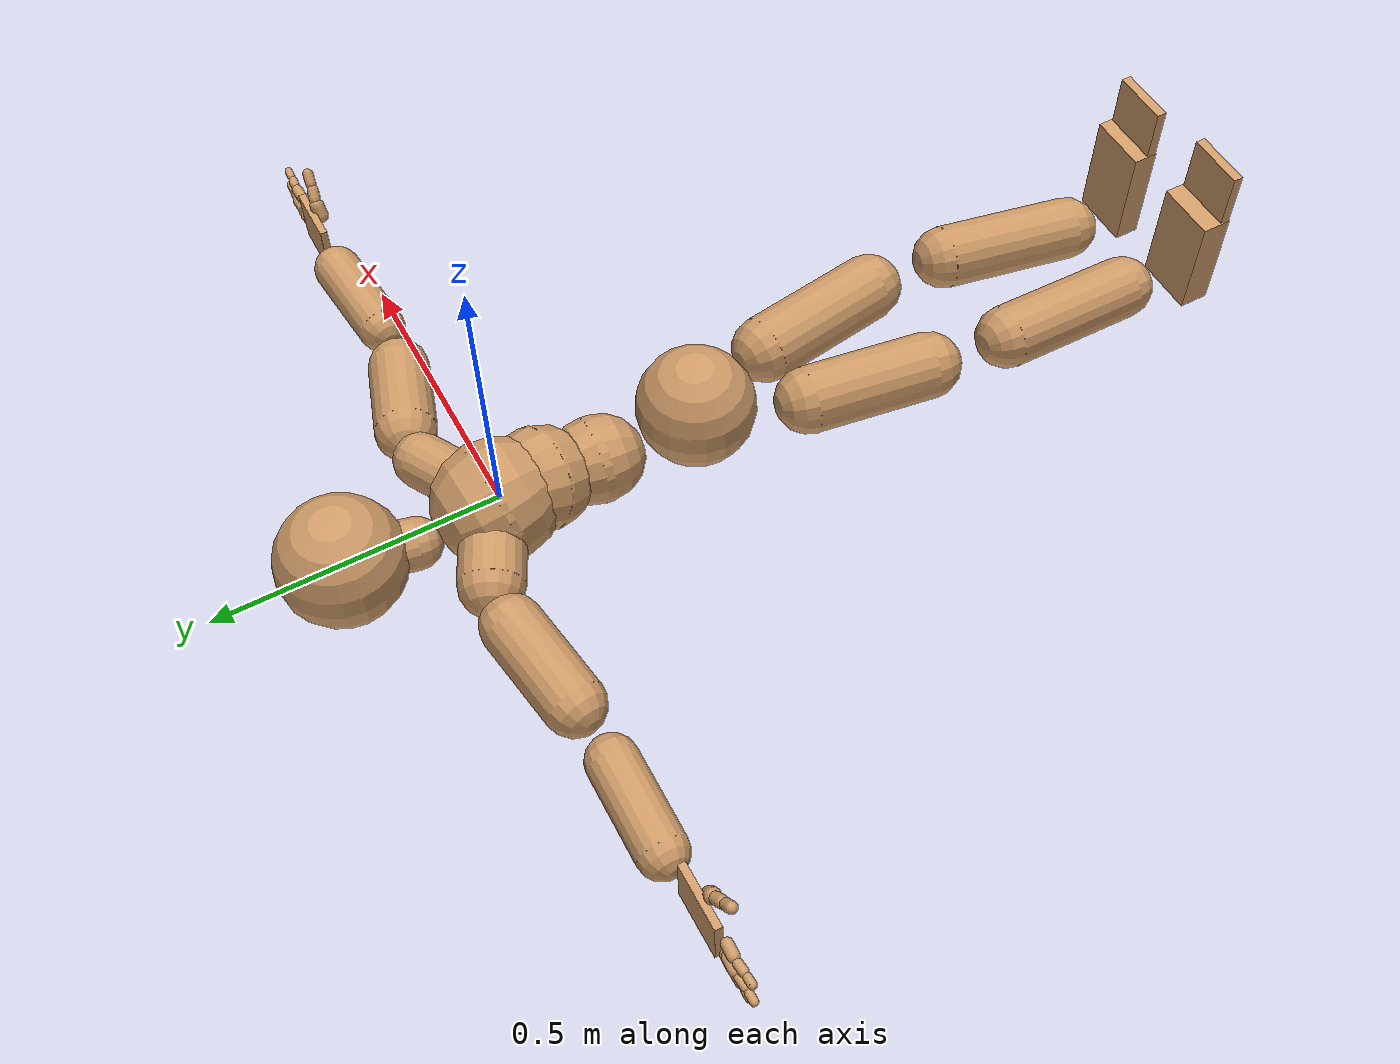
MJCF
<mujoco model="humanoid">
  <compiler coordinate="local" angle="degree"/>
  <default>
    <joint damping="0.0" armature="0.01" stiffness="0.0" limited="true"/>
    <geom conaffinity="1" condim="3" contype="7" margin="0.001" rgba="0.8 0.6 .4 1"/>
  </default>
  <asset>
    <texture type="skybox" builtin="gradient" rgb1=".4 .5 .6" rgb2="0 0 0" width="100" height="100"/>
    <texture builtin="flat" height="1278" mark="cross" markrgb="1 1 1" name="texgeom" random="0.01" rgb1="0.8 0.6 0.4" rgb2="0.8 0.6 0.4" type="cube" width="127"/>
    <texture builtin="checker" height="100" name="texplane" rgb1="0 0 0" rgb2="0.8 0.8 0.8" type="2d" width="100"/>
    <material name="MatPlane" reflectance="0.5" shininess="1" specular="1" texrepeat="60 60" texture="texplane"/>
    <material name="geom" texture="texgeom" texuniform="true"/>
  </asset>
  <worldbody>
    <body name="Pelvis" pos="0.0012 -0.3677 0.017">
      <freejoint name="Pelvis"/>
      <geom type="sphere" contype="1" conaffinity="1" density="4629.6296296296305" size="0.1044" pos="0.0000 0.0000 0.0000" name="Pelvis"/>
      <body name="L_Hip" pos="0.0566 -0.096 -0.0238">
        <joint name="L_Hip_x" type="hinge" pos="0 0 0" axis="1 0 0" stiffness="800" damping="80" armature="0.02" range="-90.0000 90.0000"/>
        <joint name="L_Hip_y" type="hinge" pos="0 0 0" axis="0 1 0" stiffness="800" damping="80" armature="0.02" range="-90.0000 90.0000"/>
        <joint name="L_Hip_z" type="hinge" pos="0 0 0" axis="0 0 1" stiffness="800" damping="80" armature="0.02" range="-90.0000 90.0000"/>
        <geom type="capsule" contype="1" conaffinity="1" density="2040.816327" fromto="0.0129 -0.0783 -0.0013 0.0514 -0.3132 -0.0052" size="0.0598" name="L_Hip"/>
        <body name="L_Knee" pos="0.0643 -0.3915 -0.0065">
          <joint name="L_Knee_x" type="hinge" pos="0 0 0" axis="1 0 0" stiffness="800" damping="80" armature="0.02" range="0.0000 180.0000"/>
          <joint name="L_Knee_y" type="hinge" pos="0 0 0" axis="0 1 0" stiffness="800" damping="80" armature="0.02" range="-5.6250 5.6250"/>
          <joint name="L_Knee_z" type="hinge" pos="0 0 0" axis="0 0 1" stiffness="800" damping="80" armature="0.02" range="-5.6250 5.6250"/>
          <geom type="capsule" contype="1" conaffinity="1" density="1234.567901" fromto="-0.0100 -0.0849 -0.0080 -0.0402 -0.3394 -0.0321" size="0.0567" name="L_Knee"/>
          <body name="L_Ankle" pos="-0.0502 -0.4243 -0.0402">
            <joint name="L_Ankle_x" type="hinge" pos="0 0 0" axis="1 0 0" stiffness="800" damping="80" armature="0.02" range="-90.0000 90.0000"/>
            <joint name="L_Ankle_y" type="hinge" pos="0 0 0" axis="0 1 0" stiffness="800" damping="80" armature="0.02" range="-90.0000 90.0000"/>
            <joint name="L_Ankle_z" type="hinge" pos="0 0 0" axis="0 0 1" stiffness="800" damping="80" armature="0.02" range="-90.0000 90.0000"/>
            <geom type="box" contype="1" conaffinity="1" density="1000.000135" pos="0.0235 -0.0317 0.0705" size="0.0557 0.0226 0.099" quat="1.0000 0.0000 0.0000 0.0000" name="L_Ankle"/>
            <body name="L_Toe" pos="0.0469 -0.0635 0.141">
              <joint name="L_Toe_x" type="hinge" pos="0 0 0" axis="1 0 0" stiffness="500" damping="50" armature="0.02" range="-90.0000 90.0000"/>
              <joint name="L_Toe_y" type="hinge" pos="0 0 0" axis="0 1 0" stiffness="500" damping="50" armature="0.02" range="-45.0000 45.0000"/>
              <joint name="L_Toe_z" type="hinge" pos="0 0 0" axis="0 0 1" stiffness="500" damping="50" armature="0.02" range="-45.0000 45.0000"/>
              <geom type="box" contype="1" conaffinity="1" density="999.999952" pos="-0.0235 0.0183 0.0715" size="0.0535 0.0091 0.0547" quat="1.0000 0.0000 0.0000 0.0000" name="L_Toe"/>
            </body>
          </body>
        </body>
      </body>
      <body name="R_Hip" pos="-0.0582 -0.1069 -0.0175">
        <joint name="R_Hip_x" type="hinge" pos="0 0 0" axis="1 0 0" stiffness="800" damping="80" armature="0.02" range="-90.0000 90.0000"/>
        <joint name="R_Hip_y" type="hinge" pos="0 0 0" axis="0 1 0" stiffness="800" damping="80" armature="0.02" range="-90.0000 90.0000"/>
        <joint name="R_Hip_z" type="hinge" pos="0 0 0" axis="0 0 1" stiffness="800" damping="80" armature="0.02" range="-90.0000 90.0000"/>
        <geom type="capsule" contype="1" conaffinity="1" density="2040.816327" fromto="-0.0094 -0.0749 -0.0028 -0.0378 -0.2995 -0.0111" size="0.0596" name="R_Hip"/>
        <body name="R_Knee" pos="-0.0472 -0.3743 -0.0139">
          <joint name="R_Knee_x" type="hinge" pos="0 0 0" axis="1 0 0" stiffness="800" damping="80" armature="0.02" range="0.0000 180.0000"/>
          <joint name="R_Knee_y" type="hinge" pos="0 0 0" axis="0 1 0" stiffness="800" damping="80" armature="0.02" range="-5.6250 5.6250"/>
          <joint name="R_Knee_z" type="hinge" pos="0 0 0" axis="0 0 1" stiffness="800" damping="80" armature="0.02" range="-5.6250 5.6250"/>
          <geom type="capsule" contype="1" conaffinity="1" density="1234.567901" fromto="0.0040 -0.0876 -0.0077 0.0159 -0.3505 -0.0309" size="0.0563" name="R_Knee"/>
          <body name="R_Ankle" pos="0.0198 -0.4381 -0.0386">
            <joint name="R_Ankle_x" type="hinge" pos="0 0 0" axis="1 0 0" stiffness="800" damping="80" armature="0.02" range="-90.0000 90.0000"/>
            <joint name="R_Ankle_y" type="hinge" pos="0 0 0" axis="0 1 0" stiffness="800" damping="80" armature="0.02" range="-90.0000 90.0000"/>
            <joint name="R_Ankle_z" type="hinge" pos="0 0 0" axis="0 0 1" stiffness="800" damping="80" armature="0.02" range="-90.0000 90.0000"/>
            <geom type="box" contype="1" conaffinity="1" density="999.999951" pos="-0.0184 -0.0311 0.0740" size="0.0557 0.027 0.099" quat="1.0000 0.0000 0.0000 0.0000" name="R_Ankle"/>
            <body name="R_Toe" pos="-0.0368 -0.0621 0.1479">
              <joint name="R_Toe_x" type="hinge" pos="0 0 0" axis="1 0 0" stiffness="500" damping="50" armature="0.02" range="-90.0000 90.0000"/>
              <joint name="R_Toe_y" type="hinge" pos="0 0 0" axis="0 1 0" stiffness="500" damping="50" armature="0.02" range="-45.0000 45.0000"/>
              <joint name="R_Toe_z" type="hinge" pos="0 0 0" axis="0 0 1" stiffness="500" damping="50" armature="0.02" range="-45.0000 45.0000"/>
              <geom type="box" contype="1" conaffinity="1" density="999.999916" pos="0.0184 0.0129 0.0750" size="0.0535 0.0089 0.0547" quat="1.0000 0.0000 0.0000 0.0000" name="R_Toe"/>
            </body>
          </body>
        </body>
      </body>
      <body name="Torso" pos="-0.0021 0.1116 -0.0376">
        <joint name="Torso_x" type="hinge" pos="0 0 0" axis="1 0 0" stiffness="1000" damping="100" armature="0.02" range="-60.0000 60.0000"/>
        <joint name="Torso_y" type="hinge" pos="0 0 0" axis="0 1 0" stiffness="1000" damping="100" armature="0.02" range="-60.0000 60.0000"/>
        <joint name="Torso_z" type="hinge" pos="0 0 0" axis="0 0 1" stiffness="1000" damping="100" armature="0.02" range="-60.0000 60.0000"/>
        <geom type="capsule" contype="1" conaffinity="1" density="2040.816327" fromto="0.0055 0.0683 0.0016 0.0067 0.0834 0.0020" size="0.0757" name="Torso"/>
        <body name="Spine" pos="0.0121 0.1517 0.0036">
          <joint name="Spine_x" type="hinge" pos="0 0 0" axis="1 0 0" stiffness="1000" damping="100" armature="0.02" range="-60.0000 60.0000"/>
          <joint name="Spine_y" type="hinge" pos="0 0 0" axis="0 1 0" stiffness="1000" damping="100" armature="0.02" range="-60.0000 60.0000"/>
          <joint name="Spine_z" type="hinge" pos="0 0 0" axis="0 0 1" stiffness="1000" damping="100" armature="0.02" range="-60.0000 60.0000"/>
          <geom type="capsule" contype="1" conaffinity="1" density="2040.816327" fromto="-0.0046 0.0258 0.0100 -0.0056 0.0315 0.0122" size="0.0904" name="Spine"/>
          <body name="Chest" pos="-0.0102 0.0573 0.0221">
            <joint name="Chest_x" type="hinge" pos="0 0 0" axis="1 0 0" stiffness="1000" damping="100" armature="0.02" range="-60.0000 60.0000"/>
            <joint name="Chest_y" type="hinge" pos="0 0 0" axis="0 1 0" stiffness="1000" damping="100" armature="0.02" range="-60.0000 60.0000"/>
            <joint name="Chest_z" type="hinge" pos="0 0 0" axis="0 0 1" stiffness="1000" damping="100" armature="0.02" range="-60.0000 60.0000"/>
            <geom type="capsule" contype="1" conaffinity="1" density="2040.816327" fromto="-0.0019 0.0488 -0.0075 -0.0024 0.0596 -0.0092" size="0.1061" name="Chest"/>
            <body name="Neck" pos="-0.0092 0.1696 -0.0303">
              <joint name="Neck_x" type="hinge" pos="0 0 0" axis="1 0 0" stiffness="500" damping="50" armature="0.02" range="-180.0000 180.0000"/>
              <joint name="Neck_y" type="hinge" pos="0 0 0" axis="0 1 0" stiffness="500" damping="50" armature="0.02" range="-180.0000 180.0000"/>
              <joint name="Neck_z" type="hinge" pos="0 0 0" axis="0 0 1" stiffness="500" damping="50" armature="0.02" range="-180.0000 180.0000"/>
              <geom type="capsule" contype="1" conaffinity="1" density="1000" fromto="0.0047 0.0304 0.0032 0.0189 0.1215 0.0126" size="0.0449" name="Neck"/>
              <body name="Head" pos="0.0236 0.1519 0.0158">
                <joint name="Head_x" type="hinge" pos="0 0 0" axis="1 0 0" stiffness="500" damping="50" armature="0.02" range="-90.0000 90.0000"/>
                <joint name="Head_y" type="hinge" pos="0 0 0" axis="0 1 0" stiffness="500" damping="50" armature="0.02" range="-90.0000 90.0000"/>
                <joint name="Head_z" type="hinge" pos="0 0 0" axis="0 0 1" stiffness="500" damping="50" armature="0.02" range="-90.0000 90.0000"/>
                <geom type="sphere" contype="1" conaffinity="1" density="1000" size="0.1110" pos="0.0000 0.0000 0.0000" name="Head"/>
              </body>
            </body>
            <body name="L_Thorax" pos="0.0397 0.0774 -0.0084">
              <joint name="L_Thorax_x" type="hinge" pos="0 0 0" axis="1 0 0" stiffness="500" damping="50" armature="0.02" range="-180.0000 180.0000"/>
              <joint name="L_Thorax_y" type="hinge" pos="0 0 0" axis="0 1 0" stiffness="500" damping="50" armature="0.02" range="-180.0000 180.0000"/>
              <joint name="L_Thorax_z" type="hinge" pos="0 0 0" axis="0 0 1" stiffness="500" damping="50" armature="0.02" range="-180.0000 180.0000"/>
              <geom type="capsule" contype="1" conaffinity="1" density="1000" fromto="0.0259 0.0125 -0.0035 0.1035 0.0501 -0.0139" size="0.0481" name="L_Thorax"/>
              <body name="L_Shoulder" pos="0.1293 0.0626 -0.0174">
                <joint name="L_Shoulder_x" type="hinge" pos="0 0 0" axis="1 0 0" stiffness="500" damping="50" armature="0.02" range="-180.0000 180.0000"/>
                <joint name="L_Shoulder_y" type="hinge" pos="0 0 0" axis="0 1 0" stiffness="500" damping="50" armature="0.02" range="-180.0000 180.0000"/>
                <joint name="L_Shoulder_z" type="hinge" pos="0 0 0" axis="0 0 1" stiffness="500" damping="50" armature="0.02" range="-180.0000 180.0000"/>
                <geom type="capsule" contype="1" conaffinity="1" density="1000" fromto="0.0515 -0.0159 -0.0085 0.2061 -0.0637 -0.0341" size="0.0542" name="L_Shoulder"/>
                <body name="L_Elbow" pos="0.2576 -0.0796 -0.0426">
                  <joint name="L_Elbow_x" type="hinge" pos="0 0 0" axis="1 0 0" stiffness="500" damping="50" armature="0.02" range="-5.6250 5.6250"/>
                  <joint name="L_Elbow_y" type="hinge" pos="0 0 0" axis="0 1 0" stiffness="500" damping="50" armature="0.02" range="-180.0000 0.0000"/>
                  <joint name="L_Elbow_z" type="hinge" pos="0 0 0" axis="0 0 1" stiffness="500" damping="50" armature="0.02" range="-5.6250 5.6250"/>
                  <geom type="capsule" contype="1" conaffinity="1" density="1000" fromto="0.0570 0.0054 -0.0003 0.2282 0.0216 -0.0013" size="0.043" name="L_Elbow"/>
                  <body name="L_Wrist" pos="0.2852 0.027 -0.0017">
                    <joint name="L_Wrist_x" type="hinge" pos="0 0 0" axis="1 0 0" stiffness="300" damping="30" armature="0.02" range="-180.0000 180.0000"/>
                    <joint name="L_Wrist_y" type="hinge" pos="0 0 0" axis="0 1 0" stiffness="300" damping="30" armature="0.02" range="-180.0000 180.0000"/>
                    <joint name="L_Wrist_z" type="hinge" pos="0 0 0" axis="0 0 1" stiffness="300" damping="30" armature="0.02" range="-180.0000 180.0000"/>
                    <geom type="box" contype="1" conaffinity="1" density="2541.499999" pos="0.0492 -0.0063 -0.0034" size="0.0556 0.0066 0.0529" quat="1.0000 0.0000 0.0000 0.0000" name="L_Wrist"/>
                    <body name="L_Index1" pos="0.1154 -0.0095 0.0225">
                      <joint name="L_Index1_x" type="hinge" pos="0 0 0" axis="1 0 0" stiffness="100" damping="10" armature="0.02" range="-5.625 5.625"/>
                      <joint name="L_Index1_y" type="hinge" pos="0 0 0" axis="0 1 0" stiffness="100" damping="10" armature="0.02" range="-5.625 5.625"/>
                      <joint name="L_Index1_z" type="hinge" pos="0 0 0" axis="0 0 1" stiffness="100" damping="10" armature="0.02" range="-55.625 0.00"/>
                      <geom type="capsule" contype="1" conaffinity="1" density="1000" fromto="0.0071 0.0004 0.0008 0.0283 0.0016 0.0031" size="0.0102" name="L_Index1"/>
                      <body name="L_Index2" pos="0.0353 0.002 0.0039">
                        <joint name="L_Index2_x" type="hinge" pos="0 0 0" axis="1 0 0" stiffness="100" damping="10" armature="0.02" range="-5.625 5.625"/>
                        <joint name="L_Index2_y" type="hinge" pos="0 0 0" axis="0 1 0" stiffness="100" damping="10" armature="0.02" range="-5.625 5.625"/>
                        <joint name="L_Index2_z" type="hinge" pos="0 0 0" axis="0 0 1" stiffness="100" damping="10" armature="0.02" range="-55.625 0.00"/>
                        <geom type="capsule" contype="1" conaffinity="1" density="1000" fromto="0.0050 -0.0005 -0.0001 0.0199 -0.0022 -0.0002" size="0.0082" name="L_Index2"/>
                        <body name="L_Index3" pos="0.0248 -0.0027 -0.0003">
                          <joint name="L_Index3_x" type="hinge" pos="0 0 0" axis="1 0 0" stiffness="100" damping="10" armature="0.02" range="-5.625 5.625"/>
                          <joint name="L_Index3_y" type="hinge" pos="0 0 0" axis="0 1 0" stiffness="100" damping="10" armature="0.02" range="-5.625 5.625"/>
                          <joint name="L_Index3_z" type="hinge" pos="0 0 0" axis="0 0 1" stiffness="100" damping="10" armature="0.02" range="-90.0000 0.00"/>
                          <geom type="capsule" contype="1" conaffinity="1" density="1000" fromto="0.0054 -0.0001 0.0003 0.0215 -0.0006 0.0014" size="0.0071" name="L_Index3"/>
                        </body>
                      </body>
                    </body>
                    <body name="L_Middle1" pos="0.1242 -0.0065 -0.0045">
                      <joint name="L_Middle1_x" type="hinge" pos="0 0 0" axis="1 0 0" stiffness="100" damping="10" armature="0.02" range="-5.625 5.625"/>
                      <joint name="L_Middle1_y" type="hinge" pos="0 0 0" axis="0 1 0" stiffness="100" damping="10" armature="0.02" range="-5.625 5.625"/>
                      <joint name="L_Middle1_z" type="hinge" pos="0 0 0" axis="0 0 1" stiffness="100" damping="10" armature="0.02" range="-55.625 0.00"/>
                      <geom type="capsule" contype="1" conaffinity="1" density="1000" fromto="0.0067 0.0001 -0.0010 0.0270 0.0005 -0.0038" size="0.0106" name="L_Middle1"/>
                      <body name="L_Middle2" pos="0.0337 0.0006 -0.0048">
                        <joint name="L_Middle2_x" type="hinge" pos="0 0 0" axis="1 0 0" stiffness="100" damping="10" armature="0.02" range="-5.625 5.625"/>
                        <joint name="L_Middle2_y" type="hinge" pos="0 0 0" axis="0 1 0" stiffness="100" damping="10" armature="0.02" range="-5.625 5.625"/>
                        <joint name="L_Middle2_z" type="hinge" pos="0 0 0" axis="0 0 1" stiffness="100" damping="10" armature="0.02" range="-55.625 0.00"/>
                        <geom type="capsule" contype="1" conaffinity="1" density="1000" fromto="0.0052 -0.0005 -0.0010 0.0207 -0.0022 -0.0039" size="0.0078" name="L_Middle2"/>
                        <body name="L_Middle3" pos="0.0258 -0.0027 -0.0048">
                          <joint name="L_Middle3_x" type="hinge" pos="0 0 0" axis="1 0 0" stiffness="100" damping="10" armature="0.02" range="-5.625 5.625"/>
                          <joint name="L_Middle3_y" type="hinge" pos="0 0 0" axis="0 1 0" stiffness="100" damping="10" armature="0.02" range="-5.625 5.625"/>
                          <joint name="L_Middle3_z" type="hinge" pos="0 0 0" axis="0 0 1" stiffness="100" damping="10" armature="0.02" range="-90.0000 0.00"/>
                          <geom type="capsule" contype="1" conaffinity="1" density="1000" fromto="0.0056 -0.0001 -0.0006 0.0223 -0.0006 -0.0023" size="0.0069" name="L_Middle3"/>
                        </body>
                      </body>
                    </body>
                    <body name="L_Pinky1" pos="0.0956 -0.0162 -0.0507">
                      <joint name="L_Pinky1_x" type="hinge" pos="0 0 0" axis="1 0 0" stiffness="100" damping="10" armature="0.02" range="-5.625 5.625"/>
                      <joint name="L_Pinky1_y" type="hinge" pos="0 0 0" axis="0 1 0" stiffness="100" damping="10" armature="0.02" range="-5.625 5.625"/>
                      <joint name="L_Pinky1_z" type="hinge" pos="0 0 0" axis="0 0 1" stiffness="100" damping="10" armature="0.02" range="-55.625 0.00"/>
                      <geom type="capsule" contype="1" conaffinity="1" density="1000" fromto="0.0036 -0.0004 -0.0025 0.0143 -0.0016 -0.0102" size="0.0074" name="L_Pinky1"/>
                      <body name="L_Pinky2" pos="0.0178 -0.002 -0.0127">
                        <joint name="L_Pinky2_x" type="hinge" pos="0 0 0" axis="1 0 0" stiffness="100" damping="10" armature="0.02" range="-5.625 5.625"/>
                        <joint name="L_Pinky2_y" type="hinge" pos="0 0 0" axis="0 1 0" stiffness="100" damping="10" armature="0.02" range="-5.625 5.625"/>
                        <joint name="L_Pinky2_z" type="hinge" pos="0 0 0" axis="0 0 1" stiffness="100" damping="10" armature="0.02" range="-55.625 0.00"/>
                        <geom type="capsule" contype="1" conaffinity="1" density="1000" fromto="0.0035 -0.0004 -0.0024 0.0139 -0.0018 -0.0095" size="0.0071" name="L_Pinky2"/>
                        <body name="L_Pinky3" pos="0.0174 -0.0022 -0.0118">
                          <joint name="L_Pinky3_x" type="hinge" pos="0 0 0" axis="1 0 0" stiffness="100" damping="10" armature="0.02" range="-5.625 5.625"/>
                          <joint name="L_Pinky3_y" type="hinge" pos="0 0 0" axis="0 1 0" stiffness="100" damping="10" armature="0.02" range="-5.625 5.625"/>
                          <joint name="L_Pinky3_z" type="hinge" pos="0 0 0" axis="0 0 1" stiffness="100" damping="10" armature="0.02" range="-90.0000 00.00"/>
                          <geom type="capsule" contype="1" conaffinity="1" density="1000" fromto="0.0039 -0.0000 -0.0020 0.0155 -0.0002 -0.0079" size="0.0054" name="L_Pinky3"/>
                        </body>
                      </body>
                    </body>
                    <body name="L_Ring1" pos="0.1108 -0.0098 -0.0317">
                      <joint name="L_Ring1_x" type="hinge" pos="0 0 0" axis="1 0 0" stiffness="100" damping="10" armature="0.02" range="-5.625 5.625"/>
                      <joint name="L_Ring1_y" type="hinge" pos="0 0 0" axis="0 1 0" stiffness="100" damping="10" armature="0.02" range="-5.625 5.625"/>
                      <joint name="L_Ring1_z" type="hinge" pos="0 0 0" axis="0 0 1" stiffness="100" damping="10" armature="0.02" range="-55.625 0.00"/>
                      <geom type="capsule" contype="1" conaffinity="1" density="1000" fromto="0.0063 0.0002 -0.0011 0.0252 0.0008 -0.0042" size="0.0089" name="L_Ring1"/>
                      <body name="L_Ring2" pos="0.0315 0.001 -0.0053">
                        <joint name="L_Ring2_x" type="hinge" pos="0 0 0" axis="1 0 0" stiffness="100" damping="10" armature="0.02" range="-5.625 5.625"/>
                        <joint name="L_Ring2_y" type="hinge" pos="0 0 0" axis="0 1 0" stiffness="100" damping="10" armature="0.02" range="-5.625 5.625"/>
                        <joint name="L_Ring2_z" type="hinge" pos="0 0 0" axis="0 0 1" stiffness="100" damping="10" armature="0.02" range="-55.625 0.00"/>
                        <geom type="capsule" contype="1" conaffinity="1" density="1000" fromto="0.0050 -0.0005 -0.0014 0.0201 -0.0019 -0.0058" size="0.0083" name="L_Ring2"/>
                        <body name="L_Ring3" pos="0.0252 -0.0023 -0.0072">
                          <joint name="L_Ring3_x" type="hinge" pos="0 0 0" axis="1 0 0" stiffness="100" damping="10" armature="0.02" range="-5.625 5.625"/>
                          <joint name="L_Ring3_y" type="hinge" pos="0 0 0" axis="0 1 0" stiffness="100" damping="10" armature="0.02" range="-5.625 5.625"/>
                          <joint name="L_Ring3_z" type="hinge" pos="0 0 0" axis="0 0 1" stiffness="100" damping="10" armature="0.02" range="-90.0000 00.00"/>
                          <geom type="capsule" contype="1" conaffinity="1" density="1000" fromto="0.0054 -0.0001 -0.0010 0.0217 -0.0003 -0.0042" size="0.0065" name="L_Ring3"/>
                        </body>
                      </body>
                    </body>
                    <body name="L_Thumb1" pos="0.0457 -0.0214 0.0301">
                      <joint name="L_Thumb1_x" type="hinge" pos="0 0 0" axis="1 0 0" stiffness="100" damping="10" armature="0.02" range="-55.625 55.625"/>
                      <joint name="L_Thumb1_y" type="hinge" pos="0 0 0" axis="0 1 0" stiffness="100" damping="10" armature="0.02" range="-55.625 55.625"/>
                      <joint name="L_Thumb1_z" type="hinge" pos="0 0 0" axis="0 0 1" stiffness="100" damping="10" armature="0.02" range="-55.625 55.625"/>
                      <geom type="capsule" contype="1" conaffinity="1" density="1000" fromto="0.0037 0.0003 0.0058 0.0146 0.0013 0.0231" size="0.0135" name="L_Thumb1"/>
                      <body name="L_Thumb2" pos="0.0183 0.0017 0.0289">
                        <joint name="L_Thumb2_x" type="hinge" pos="0 0 0" axis="1 0 0" stiffness="100" damping="10" armature="0.02" range="-5.625 5.625"/>
                        <joint name="L_Thumb2_y" type="hinge" pos="0 0 0" axis="0 1 0" stiffness="100" damping="10" armature="0.02" range="-5.625 5.625"/>
                        <joint name="L_Thumb2_z" type="hinge" pos="0 0 0" axis="0 0 1" stiffness="100" damping="10" armature="0.02" range="-5.625 5.625"/>
                        <geom type="capsule" contype="1" conaffinity="1" density="1000" fromto="0.0044 -0.0010 0.0036 0.0177 -0.0041 0.0144" size="0.0106" name="L_Thumb2"/>
                        <body name="L_Thumb3" pos="0.0221 -0.0051 0.0181">
                          <joint name="L_Thumb3_x" type="hinge" pos="0 0 0" axis="1 0 0" stiffness="100" damping="10" armature="0.02" range="-5.625 5.625"/>
                          <joint name="L_Thumb3_y" type="hinge" pos="0 0 0" axis="0 1 0" stiffness="100" damping="10" armature="0.02" range="-5.625 5.625"/>
                          <joint name="L_Thumb3_z" type="hinge" pos="0 0 0" axis="0 0 1" stiffness="100" damping="10" armature="0.02" range="-90.0000 00.00"/>
                          <geom type="capsule" contype="1" conaffinity="1" density="1000" fromto="0.0048 -0.0006 0.0040 0.0193 -0.0025 0.0160" size="0.0097" name="L_Thumb3"/>
                        </body>
                      </body>
                    </body>
                  </body>
                </body>
              </body>
            </body>
            <body name="R_Thorax" pos="-0.0434 0.0782 -0.0114">
              <joint name="R_Thorax_x" type="hinge" pos="0 0 0" axis="1 0 0" stiffness="500" damping="50" armature="0.02" range="-180.0000 180.0000"/>
              <joint name="R_Thorax_y" type="hinge" pos="0 0 0" axis="0 1 0" stiffness="500" damping="50" armature="0.02" range="-180.0000 180.0000"/>
              <joint name="R_Thorax_z" type="hinge" pos="0 0 0" axis="0 0 1" stiffness="500" damping="50" armature="0.02" range="-180.0000 180.0000"/>
              <geom type="capsule" contype="1" conaffinity="1" density="1000" fromto="-0.0239 0.0120 -0.0026 -0.0957 0.0478 -0.0105" size="0.0568" name="R_Thorax"/>
              <body name="R_Shoulder" pos="-0.1197 0.0598 -0.0131">
                <joint name="R_Shoulder_x" type="hinge" pos="0 0 0" axis="1 0 0" stiffness="500" damping="50" armature="0.02" range="-180.0000 180.0000"/>
                <joint name="R_Shoulder_y" type="hinge" pos="0 0 0" axis="0 1 0" stiffness="500" damping="50" armature="0.02" range="-180.0000 180.0000"/>
                <joint name="R_Shoulder_z" type="hinge" pos="0 0 0" axis="0 0 1" stiffness="500" damping="50" armature="0.02" range="-180.0000 180.0000"/>
                <geom type="capsule" contype="1" conaffinity="1" density="1000" fromto="-0.0551 -0.0095 -0.0063 -0.2205 -0.0381 -0.0251" size="0.0533" name="R_Shoulder"/>
                <body name="R_Elbow" pos="-0.2756 -0.0476 -0.0313">
                  <joint name="R_Elbow_x" type="hinge" pos="0 0 0" axis="1 0 0" stiffness="500" damping="50" armature="0.02" range="-5.6250 5.6250"/>
                  <joint name="R_Elbow_y" type="hinge" pos="0 0 0" axis="0 1 0" stiffness="500" damping="50" armature="0.02" range="0.0000 180.0000"/>
                  <joint name="R_Elbow_z" type="hinge" pos="0 0 0" axis="0 0 1" stiffness="500" damping="50" armature="0.02" range="-5.6250 5.6250"/>
                  <geom type="capsule" contype="1" conaffinity="1" density="1000" fromto="-0.0552 0.0002 -0.0026 -0.2208 0.0006 -0.0105" size="0.0441" name="R_Elbow"/>
                  <body name="R_Wrist" pos="-0.276 0.0008 -0.0131">
                    <joint name="R_Wrist_x" type="hinge" pos="0 0 0" axis="1 0 0" stiffness="300" damping="30" armature="0.02" range="-180.0000 180.0000"/>
                    <joint name="R_Wrist_y" type="hinge" pos="0 0 0" axis="0 1 0" stiffness="300" damping="30" armature="0.02" range="-180.0000 180.0000"/>
                    <joint name="R_Wrist_z" type="hinge" pos="0 0 0" axis="0 0 1" stiffness="300" damping="30" armature="0.02" range="-180.0000 180.0000"/>
                    <geom type="box" contype="1" conaffinity="1" density="2541.500103" pos="-0.0489 -0.0082 -0.0040" size="0.0571 0.0067 0.0529" quat="1.0000 0.0000 0.0000 0.0000" name="R_Wrist"/>
                    <body name="R_Index1" pos="-0.1147 -0.0133 0.0215">
                      <joint name="R_Index1_x" type="hinge" pos="0 0 0" axis="1 0 0" stiffness="100" damping="10" armature="0.02" range="-5.625 5.625"/>
                      <joint name="R_Index1_y" type="hinge" pos="0 0 0" axis="0 1 0" stiffness="100" damping="10" armature="0.02" range="-5.625 5.625"/>
                      <joint name="R_Index1_z" type="hinge" pos="0 0 0" axis="0 0 1" stiffness="100" damping="10" armature="0.02" range="0.00 55.625"/>
                      <geom type="capsule" contype="1" conaffinity="1" density="1000" fromto="-0.0071 0.0004 0.0008 -0.0283 0.0016 0.0031" size="0.0102" name="R_Index1"/>
                      <body name="R_Index2" pos="-0.0353 0.002 0.0039">
                        <joint name="R_Index2_x" type="hinge" pos="0 0 0" axis="1 0 0" stiffness="100" damping="10" armature="0.02" range="-5.625 5.625"/>
                        <joint name="R_Index2_y" type="hinge" pos="0 0 0" axis="0 1 0" stiffness="100" damping="10" armature="0.02" range="-5.625 5.625"/>
                        <joint name="R_Index2_z" type="hinge" pos="0 0 0" axis="0 0 1" stiffness="100" damping="10" armature="0.02" range="0.00 55.625"/>
                        <geom type="capsule" contype="1" conaffinity="1" density="1000" fromto="-0.0050 -0.0005 -0.0001 -0.0199 -0.0022 -0.0002" size="0.0082" name="R_Index2"/>
                        <body name="R_Index3" pos="-0.0248 -0.0027 -0.0003">
                          <joint name="R_Index3_x" type="hinge" pos="0 0 0" axis="1 0 0" stiffness="100" damping="10" armature="0.02" range="-5.625 5.625"/>
                          <joint name="R_Index3_y" type="hinge" pos="0 0 0" axis="0 1 0" stiffness="100" damping="10" armature="0.02" range="-5.625 5.625"/>
                          <joint name="R_Index3_z" type="hinge" pos="0 0 0" axis="0 0 1" stiffness="100" damping="10" armature="0.02" range="00.00 90.0000"/>
                          <geom type="capsule" contype="1" conaffinity="1" density="1000" fromto="-0.0046 -0.0001 0.0003 -0.0183 -0.0006 0.0014" size="0.0074" name="R_Index3"/>
                        </body>
                      </body>
                    </body>
                    <body name="R_Middle1" pos="-0.1236 -0.0103 -0.0056">
                      <joint name="R_Middle1_x" type="hinge" pos="0 0 0" axis="1 0 0" stiffness="100" damping="10" armature="0.02" range="-5.625 5.625"/>
                      <joint name="R_Middle1_y" type="hinge" pos="0 0 0" axis="0 1 0" stiffness="100" damping="10" armature="0.02" range="-5.625 5.625"/>
                      <joint name="R_Middle1_z" type="hinge" pos="0 0 0" axis="0 0 1" stiffness="100" damping="10" armature="0.02" range="0.00 55.625"/>
                      <geom type="capsule" contype="1" conaffinity="1" density="1000" fromto="-0.0067 0.0001 -0.0010 -0.0270 0.0004 -0.0038" size="0.0106" name="R_Middle1"/>
                      <body name="R_Middle2" pos="-0.0337 0.0006 -0.0048">
                        <joint name="R_Middle2_x" type="hinge" pos="0 0 0" axis="1 0 0" stiffness="100" damping="10" armature="0.02" range="-5.625 5.625"/>
                        <joint name="R_Middle2_y" type="hinge" pos="0 0 0" axis="0 1 0" stiffness="100" damping="10" armature="0.02" range="-5.625 5.625"/>
                        <joint name="R_Middle2_z" type="hinge" pos="0 0 0" axis="0 0 1" stiffness="100" damping="10" armature="0.02" range="0.00 55.625"/>
                        <geom type="capsule" contype="1" conaffinity="1" density="1000" fromto="-0.0052 -0.0005 -0.0010 -0.0207 -0.0022 -0.0039" size="0.0078" name="R_Middle2"/>
                        <body name="R_Middle3" pos="-0.0258 -0.0027 -0.0048">
                          <joint name="R_Middle3_x" type="hinge" pos="0 0 0" axis="1 0 0" stiffness="100" damping="10" armature="0.02" range="-5.625 5.625"/>
                          <joint name="R_Middle3_y" type="hinge" pos="0 0 0" axis="0 1 0" stiffness="100" damping="10" armature="0.02" range="-5.625 5.625"/>
                          <joint name="R_Middle3_z" type="hinge" pos="0 0 0" axis="0 0 1" stiffness="100" damping="10" armature="0.02" range="00.00 90.0000"/>
                          <geom type="capsule" contype="1" conaffinity="1" density="1000" fromto="-0.0048 -0.0001 -0.0006 -0.0191 -0.0006 -0.0023" size="0.0072" name="R_Middle3"/>
                        </body>
                      </body>
                    </body>
                    <body name="R_Pinky1" pos="-0.095 -0.0199 -0.0517">
                      <joint name="R_Pinky1_x" type="hinge" pos="0 0 0" axis="1 0 0" stiffness="100" damping="10" armature="0.02" range="-5.625 5.625"/>
                      <joint name="R_Pinky1_y" type="hinge" pos="0 0 0" axis="0 1 0" stiffness="100" damping="10" armature="0.02" range="-5.625 5.625"/>
                      <joint name="R_Pinky1_z" type="hinge" pos="0 0 0" axis="0 0 1" stiffness="100" damping="10" armature="0.02" range="0.00 55.625"/>
                      <geom type="capsule" contype="1" conaffinity="1" density="1000" fromto="-0.0036 -0.0004 -0.0025 -0.0143 -0.0016 -0.0102" size="0.0074" name="R_Pinky1"/>
                      <body name="R_Pinky2" pos="-0.0178 -0.002 -0.0127">
                        <joint name="R_Pinky2_x" type="hinge" pos="0 0 0" axis="1 0 0" stiffness="100" damping="10" armature="0.02" range="-5.625 5.625"/>
                        <joint name="R_Pinky2_y" type="hinge" pos="0 0 0" axis="0 1 0" stiffness="100" damping="10" armature="0.02" range="-5.625 5.625"/>
                        <joint name="R_Pinky2_z" type="hinge" pos="0 0 0" axis="0 0 1" stiffness="100" damping="10" armature="0.02" range="0.00 55.625"/>
                        <geom type="capsule" contype="1" conaffinity="1" density="1000" fromto="-0.0035 -0.0004 -0.0024 -0.0139 -0.0018 -0.0095" size="0.0071" name="R_Pinky2"/>
                        <body name="R_Pinky3" pos="-0.0174 -0.0022 -0.0118">
                          <joint name="R_Pinky3_x" type="hinge" pos="0 0 0" axis="1 0 0" stiffness="100" damping="10" armature="0.02" range="-5.625 5.625"/>
                          <joint name="R_Pinky3_y" type="hinge" pos="0 0 0" axis="0 1 0" stiffness="100" damping="10" armature="0.02" range="-5.625 5.625"/>
                          <joint name="R_Pinky3_z" type="hinge" pos="0 0 0" axis="0 0 1" stiffness="100" damping="10" armature="0.02" range="00.00 90.0000"/>
                          <geom type="capsule" contype="1" conaffinity="1" density="1000" fromto="-0.0031 -0.0000 -0.0020 -0.0123 -0.0002 -0.0079" size="0.0056" name="R_Pinky3"/>
                        </body>
                      </body>
                    </body>
                    <body name="R_Ring1" pos="-0.1101 -0.0136 -0.0328">
                      <joint name="R_Ring1_x" type="hinge" pos="0 0 0" axis="1 0 0" stiffness="100" damping="10" armature="0.02" range="-5.625 5.625"/>
                      <joint name="R_Ring1_y" type="hinge" pos="0 0 0" axis="0 1 0" stiffness="100" damping="10" armature="0.02" range="-5.625 5.625"/>
                      <joint name="R_Ring1_z" type="hinge" pos="0 0 0" axis="0 0 1" stiffness="100" damping="10" armature="0.02" range="0.00 55.625"/>
                      <geom type="capsule" contype="1" conaffinity="1" density="1000" fromto="-0.0063 0.0002 -0.0011 -0.0252 0.0008 -0.0042" size="0.009" name="R_Ring1"/>
                      <body name="R_Ring2" pos="-0.0315 0.001 -0.0053">
                        <joint name="R_Ring2_x" type="hinge" pos="0 0 0" axis="1 0 0" stiffness="100" damping="10" armature="0.02" range="-5.625 5.625"/>
                        <joint name="R_Ring2_y" type="hinge" pos="0 0 0" axis="0 1 0" stiffness="100" damping="10" armature="0.02" range="-5.625 5.625"/>
                        <joint name="R_Ring2_z" type="hinge" pos="0 0 0" axis="0 0 1" stiffness="100" damping="10" armature="0.02" range="0.00 55.625"/>
                        <geom type="capsule" contype="1" conaffinity="1" density="1000" fromto="-0.0050 -0.0005 -0.0014 -0.0201 -0.0019 -0.0058" size="0.0083" name="R_Ring2"/>
                        <body name="R_Ring3" pos="-0.0252 -0.0023 -0.0072">
                          <joint name="R_Ring3_x" type="hinge" pos="0 0 0" axis="1 0 0" stiffness="100" damping="10" armature="0.02" range="-5.625 5.625"/>
                          <joint name="R_Ring3_y" type="hinge" pos="0 0 0" axis="0 1 0" stiffness="100" damping="10" armature="0.02" range="-5.625 5.625"/>
                          <joint name="R_Ring3_z" type="hinge" pos="0 0 0" axis="0 0 1" stiffness="100" damping="10" armature="0.02" range="00.00 90.0000"/>
                          <geom type="capsule" contype="1" conaffinity="1" density="1000" fromto="-0.0046 -0.0001 -0.0010 -0.0185 -0.0003 -0.0042" size="0.0067" name="R_Ring3"/>
                        </body>
                      </body>
                    </body>
                    <body name="R_Thumb1" pos="-0.0451 -0.0251 0.029">
                      <joint name="R_Thumb1_x" type="hinge" pos="0 0 0" axis="1 0 0" stiffness="100" damping="10" armature="0.02" range="-55.625 55.625"/>
                      <joint name="R_Thumb1_y" type="hinge" pos="0 0 0" axis="0 1 0" stiffness="100" damping="10" armature="0.02" range="-55.625 55.625"/>
                      <joint name="R_Thumb1_z" type="hinge" pos="0 0 0" axis="0 0 1" stiffness="100" damping="10" armature="0.02" range="-55.625 55.625"/>
                      <geom type="capsule" contype="1" conaffinity="1" density="1000" fromto="-0.0037 0.0003 0.0058 -0.0146 0.0013 0.0231" size="0.0135" name="R_Thumb1"/>
                      <body name="R_Thumb2" pos="-0.0183 0.0017 0.0289">
                        <joint name="R_Thumb2_x" type="hinge" pos="0 0 0" axis="1 0 0" stiffness="100" damping="10" armature="0.02" range="-5.625 5.625"/>
                        <joint name="R_Thumb2_y" type="hinge" pos="0 0 0" axis="0 1 0" stiffness="100" damping="10" armature="0.02" range="-5.625 5.625"/>
                        <joint name="R_Thumb2_z" type="hinge" pos="0 0 0" axis="0 0 1" stiffness="100" damping="10" armature="0.02" range="-5.625 5.625"/>
                        <geom type="capsule" contype="1" conaffinity="1" density="1000" fromto="-0.0044 -0.0010 0.0036 -0.0177 -0.0041 0.0144" size="0.0106" name="R_Thumb2"/>
                        <body name="R_Thumb3" pos="-0.0221 -0.0051 0.0181">
                          <joint name="R_Thumb3_x" type="hinge" pos="0 0 0" axis="1 0 0" stiffness="100" damping="10" armature="0.02" range="-5.625 5.625"/>
                          <joint name="R_Thumb3_y" type="hinge" pos="0 0 0" axis="0 1 0" stiffness="100" damping="10" armature="0.02" range="-5.625 5.625"/>
                          <joint name="R_Thumb3_z" type="hinge" pos="0 0 0" axis="0 0 1" stiffness="100" damping="10" armature="0.02" range="00.00 90.0000"/>
                          <geom type="capsule" contype="1" conaffinity="1" density="1000" fromto="-0.0040 -0.0006 0.0040 -0.0161 -0.0025 0.0160" size="0.0099" name="R_Thumb3"/>
                        </body>
                      </body>
                    </body>
                  </body>
                </body>
              </body>
            </body>
          </body>
        </body>
      </body>
    </body>
  </worldbody>
  <actuator>
    <motor name="L_Hip_x" joint="L_Hip_x" gear="1"/>
    <motor name="L_Hip_y" joint="L_Hip_y" gear="1"/>
    <motor name="L_Hip_z" joint="L_Hip_z" gear="1"/>
    <motor name="L_Knee_x" joint="L_Knee_x" gear="1"/>
    <motor name="L_Knee_y" joint="L_Knee_y" gear="1"/>
    <motor name="L_Knee_z" joint="L_Knee_z" gear="1"/>
    <motor name="L_Ankle_x" joint="L_Ankle_x" gear="1"/>
    <motor name="L_Ankle_y" joint="L_Ankle_y" gear="1"/>
    <motor name="L_Ankle_z" joint="L_Ankle_z" gear="1"/>
    <motor name="L_Toe_x" joint="L_Toe_x" gear="1"/>
    <motor name="L_Toe_y" joint="L_Toe_y" gear="1"/>
    <motor name="L_Toe_z" joint="L_Toe_z" gear="1"/>
    <motor name="R_Hip_x" joint="R_Hip_x" gear="1"/>
    <motor name="R_Hip_y" joint="R_Hip_y" gear="1"/>
    <motor name="R_Hip_z" joint="R_Hip_z" gear="1"/>
    <motor name="R_Knee_x" joint="R_Knee_x" gear="1"/>
    <motor name="R_Knee_y" joint="R_Knee_y" gear="1"/>
    <motor name="R_Knee_z" joint="R_Knee_z" gear="1"/>
    <motor name="R_Ankle_x" joint="R_Ankle_x" gear="1"/>
    <motor name="R_Ankle_y" joint="R_Ankle_y" gear="1"/>
    <motor name="R_Ankle_z" joint="R_Ankle_z" gear="1"/>
    <motor name="R_Toe_x" joint="R_Toe_x" gear="1"/>
    <motor name="R_Toe_y" joint="R_Toe_y" gear="1"/>
    <motor name="R_Toe_z" joint="R_Toe_z" gear="1"/>
    <motor name="Torso_x" joint="Torso_x" gear="1"/>
    <motor name="Torso_y" joint="Torso_y" gear="1"/>
    <motor name="Torso_z" joint="Torso_z" gear="1"/>
    <motor name="Spine_x" joint="Spine_x" gear="1"/>
    <motor name="Spine_y" joint="Spine_y" gear="1"/>
    <motor name="Spine_z" joint="Spine_z" gear="1"/>
    <motor name="Chest_x" joint="Chest_x" gear="1"/>
    <motor name="Chest_y" joint="Chest_y" gear="1"/>
    <motor name="Chest_z" joint="Chest_z" gear="1"/>
    <motor name="Neck_x" joint="Neck_x" gear="1"/>
    <motor name="Neck_y" joint="Neck_y" gear="1"/>
    <motor name="Neck_z" joint="Neck_z" gear="1"/>
    <motor name="Head_x" joint="Head_x" gear="1"/>
    <motor name="Head_y" joint="Head_y" gear="1"/>
    <motor name="Head_z" joint="Head_z" gear="1"/>
    <motor name="L_Thorax_x" joint="L_Thorax_x" gear="1"/>
    <motor name="L_Thorax_y" joint="L_Thorax_y" gear="1"/>
    <motor name="L_Thorax_z" joint="L_Thorax_z" gear="1"/>
    <motor name="L_Shoulder_x" joint="L_Shoulder_x" gear="1"/>
    <motor name="L_Shoulder_y" joint="L_Shoulder_y" gear="1"/>
    <motor name="L_Shoulder_z" joint="L_Shoulder_z" gear="1"/>
    <motor name="L_Elbow_x" joint="L_Elbow_x" gear="1"/>
    <motor name="L_Elbow_y" joint="L_Elbow_y" gear="1"/>
    <motor name="L_Elbow_z" joint="L_Elbow_z" gear="1"/>
    <motor name="L_Wrist_x" joint="L_Wrist_x" gear="1"/>
    <motor name="L_Wrist_y" joint="L_Wrist_y" gear="1"/>
    <motor name="L_Wrist_z" joint="L_Wrist_z" gear="1"/>
    <motor name="L_Index1_x" joint="L_Index1_x" gear="1"/>
    <motor name="L_Index1_y" joint="L_Index1_y" gear="1"/>
    <motor name="L_Index1_z" joint="L_Index1_z" gear="1"/>
    <motor name="L_Index2_x" joint="L_Index2_x" gear="1"/>
    <motor name="L_Index2_y" joint="L_Index2_y" gear="1"/>
    <motor name="L_Index2_z" joint="L_Index2_z" gear="1"/>
    <motor name="L_Index3_x" joint="L_Index3_x" gear="1"/>
    <motor name="L_Index3_y" joint="L_Index3_y" gear="1"/>
    <motor name="L_Index3_z" joint="L_Index3_z" gear="1"/>
    <motor name="L_Middle1_x" joint="L_Middle1_x" gear="1"/>
    <motor name="L_Middle1_y" joint="L_Middle1_y" gear="1"/>
    <motor name="L_Middle1_z" joint="L_Middle1_z" gear="1"/>
    <motor name="L_Middle2_x" joint="L_Middle2_x" gear="1"/>
    <motor name="L_Middle2_y" joint="L_Middle2_y" gear="1"/>
    <motor name="L_Middle2_z" joint="L_Middle2_z" gear="1"/>
    <motor name="L_Middle3_x" joint="L_Middle3_x" gear="1"/>
    <motor name="L_Middle3_y" joint="L_Middle3_y" gear="1"/>
    <motor name="L_Middle3_z" joint="L_Middle3_z" gear="1"/>
    <motor name="L_Pinky1_x" joint="L_Pinky1_x" gear="1"/>
    <motor name="L_Pinky1_y" joint="L_Pinky1_y" gear="1"/>
    <motor name="L_Pinky1_z" joint="L_Pinky1_z" gear="1"/>
    <motor name="L_Pinky2_x" joint="L_Pinky2_x" gear="1"/>
    <motor name="L_Pinky2_y" joint="L_Pinky2_y" gear="1"/>
    <motor name="L_Pinky2_z" joint="L_Pinky2_z" gear="1"/>
    <motor name="L_Pinky3_x" joint="L_Pinky3_x" gear="1"/>
    <motor name="L_Pinky3_y" joint="L_Pinky3_y" gear="1"/>
    <motor name="L_Pinky3_z" joint="L_Pinky3_z" gear="1"/>
    <motor name="L_Ring1_x" joint="L_Ring1_x" gear="1"/>
    <motor name="L_Ring1_y" joint="L_Ring1_y" gear="1"/>
    <motor name="L_Ring1_z" joint="L_Ring1_z" gear="1"/>
    <motor name="L_Ring2_x" joint="L_Ring2_x" gear="1"/>
    <motor name="L_Ring2_y" joint="L_Ring2_y" gear="1"/>
    <motor name="L_Ring2_z" joint="L_Ring2_z" gear="1"/>
    <motor name="L_Ring3_x" joint="L_Ring3_x" gear="1"/>
    <motor name="L_Ring3_y" joint="L_Ring3_y" gear="1"/>
    <motor name="L_Ring3_z" joint="L_Ring3_z" gear="1"/>
    <motor name="L_Thumb1_x" joint="L_Thumb1_x" gear="1"/>
    <motor name="L_Thumb1_y" joint="L_Thumb1_y" gear="1"/>
    <motor name="L_Thumb1_z" joint="L_Thumb1_z" gear="1"/>
    <motor name="L_Thumb2_x" joint="L_Thumb2_x" gear="1"/>
    <motor name="L_Thumb2_y" joint="L_Thumb2_y" gear="1"/>
    <motor name="L_Thumb2_z" joint="L_Thumb2_z" gear="1"/>
    <motor name="L_Thumb3_x" joint="L_Thumb3_x" gear="1"/>
    <motor name="L_Thumb3_y" joint="L_Thumb3_y" gear="1"/>
    <motor name="L_Thumb3_z" joint="L_Thumb3_z" gear="1"/>
    <motor name="R_Thorax_x" joint="R_Thorax_x" gear="1"/>
    <motor name="R_Thorax_y" joint="R_Thorax_y" gear="1"/>
    <motor name="R_Thorax_z" joint="R_Thorax_z" gear="1"/>
    <motor name="R_Shoulder_x" joint="R_Shoulder_x" gear="1"/>
    <motor name="R_Shoulder_y" joint="R_Shoulder_y" gear="1"/>
    <motor name="R_Shoulder_z" joint="R_Shoulder_z" gear="1"/>
    <motor name="R_Elbow_x" joint="R_Elbow_x" gear="1"/>
    <motor name="R_Elbow_y" joint="R_Elbow_y" gear="1"/>
    <motor name="R_Elbow_z" joint="R_Elbow_z" gear="1"/>
    <motor name="R_Wrist_x" joint="R_Wrist_x" gear="1"/>
    <motor name="R_Wrist_y" joint="R_Wrist_y" gear="1"/>
    <motor name="R_Wrist_z" joint="R_Wrist_z" gear="1"/>
    <motor name="R_Index1_x" joint="R_Index1_x" gear="1"/>
    <motor name="R_Index1_y" joint="R_Index1_y" gear="1"/>
    <motor name="R_Index1_z" joint="R_Index1_z" gear="1"/>
    <motor name="R_Index2_x" joint="R_Index2_x" gear="1"/>
    <motor name="R_Index2_y" joint="R_Index2_y" gear="1"/>
    <motor name="R_Index2_z" joint="R_Index2_z" gear="1"/>
    <motor name="R_Index3_x" joint="R_Index3_x" gear="1"/>
    <motor name="R_Index3_y" joint="R_Index3_y" gear="1"/>
    <motor name="R_Index3_z" joint="R_Index3_z" gear="1"/>
    <motor name="R_Middle1_x" joint="R_Middle1_x" gear="1"/>
    <motor name="R_Middle1_y" joint="R_Middle1_y" gear="1"/>
    <motor name="R_Middle1_z" joint="R_Middle1_z" gear="1"/>
    <motor name="R_Middle2_x" joint="R_Middle2_x" gear="1"/>
    <motor name="R_Middle2_y" joint="R_Middle2_y" gear="1"/>
    <motor name="R_Middle2_z" joint="R_Middle2_z" gear="1"/>
    <motor name="R_Middle3_x" joint="R_Middle3_x" gear="1"/>
    <motor name="R_Middle3_y" joint="R_Middle3_y" gear="1"/>
    <motor name="R_Middle3_z" joint="R_Middle3_z" gear="1"/>
    <motor name="R_Pinky1_x" joint="R_Pinky1_x" gear="1"/>
    <motor name="R_Pinky1_y" joint="R_Pinky1_y" gear="1"/>
    <motor name="R_Pinky1_z" joint="R_Pinky1_z" gear="1"/>
    <motor name="R_Pinky2_x" joint="R_Pinky2_x" gear="1"/>
    <motor name="R_Pinky2_y" joint="R_Pinky2_y" gear="1"/>
    <motor name="R_Pinky2_z" joint="R_Pinky2_z" gear="1"/>
    <motor name="R_Pinky3_x" joint="R_Pinky3_x" gear="1"/>
    <motor name="R_Pinky3_y" joint="R_Pinky3_y" gear="1"/>
    <motor name="R_Pinky3_z" joint="R_Pinky3_z" gear="1"/>
    <motor name="R_Ring1_x" joint="R_Ring1_x" gear="1"/>
    <motor name="R_Ring1_y" joint="R_Ring1_y" gear="1"/>
    <motor name="R_Ring1_z" joint="R_Ring1_z" gear="1"/>
    <motor name="R_Ring2_x" joint="R_Ring2_x" gear="1"/>
    <motor name="R_Ring2_y" joint="R_Ring2_y" gear="1"/>
    <motor name="R_Ring2_z" joint="R_Ring2_z" gear="1"/>
    <motor name="R_Ring3_x" joint="R_Ring3_x" gear="1"/>
    <motor name="R_Ring3_y" joint="R_Ring3_y" gear="1"/>
    <motor name="R_Ring3_z" joint="R_Ring3_z" gear="1"/>
    <motor name="R_Thumb1_x" joint="R_Thumb1_x" gear="1"/>
    <motor name="R_Thumb1_y" joint="R_Thumb1_y" gear="1"/>
    <motor name="R_Thumb1_z" joint="R_Thumb1_z" gear="1"/>
    <motor name="R_Thumb2_x" joint="R_Thumb2_x" gear="1"/>
    <motor name="R_Thumb2_y" joint="R_Thumb2_y" gear="1"/>
    <motor name="R_Thumb2_z" joint="R_Thumb2_z" gear="1"/>
    <motor name="R_Thumb3_x" joint="R_Thumb3_x" gear="1"/>
    <motor name="R_Thumb3_y" joint="R_Thumb3_y" gear="1"/>
    <motor name="R_Thumb3_z" joint="R_Thumb3_z" gear="1"/>
  </actuator>
  <contact>
    <exclude body1="Torso" body2="Chest"/>
    <exclude body1="Head" body2="Chest"/>
    <exclude body1="R_Knee" body2="R_Toe"/>
    <exclude body1="R_Knee" body2="L_Ankle"/>
    <exclude body1="R_Knee" body2="L_Toe"/>
    <exclude body1="L_Knee" body2="L_Toe"/>
    <exclude body1="L_Knee" body2="R_Ankle"/>
    <exclude body1="L_Knee" body2="R_Toe"/>
    <exclude body1="L_Shoulder" body2="Chest"/>
    <exclude body1="R_Shoulder" body2="Chest"/>
  </contact>
  <sensor/>
  <size njmax="700" nconmax="700"/>
</mujoco>
